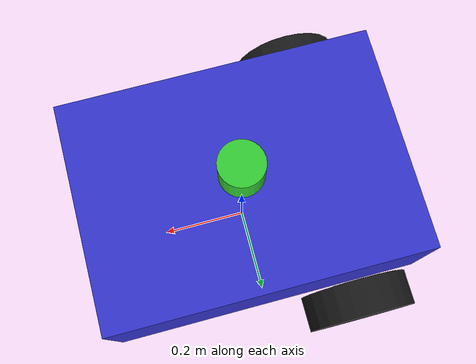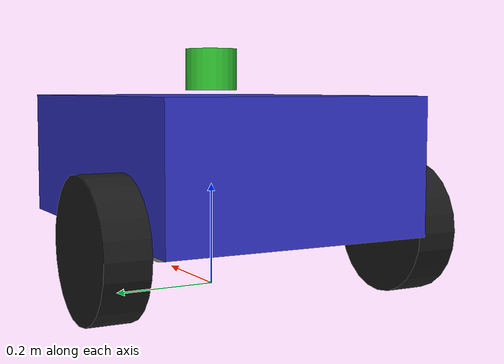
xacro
<?xml version="1.0"?>
<robot xmlns:xacro="http://www.ros.org/wiki/xacro" name="field_robot">

  <!-- Properties -->
  <xacro:property name="base_width" value="0.5"/>
  <xacro:property name="base_length" value="0.7"/>
  <xacro:property name="base_height" value="0.25"/>
  <xacro:property name="wheel_radius" value="0.125"/>
  <xacro:property name="wheel_width" value="0.08"/>
  <xacro:property name="wheel_xoff" value="-0.2"/>
  <!-- Rear wheels -->
  <xacro:property name="wheel_yoff" value="0.3"/>
  <xacro:property name="caster_radius" value="0.05"/>
  <xacro:property name="caster_xoff" value="0.25"/>
  <!-- Front caster -->

  <!-- Materials -->
  <material name="blue">
    <color rgba="0.2 0.2 0.8 1.0"/>
  </material>

  <material name="black">
    <color rgba="0.1 0.1 0.1 1.0"/>
  </material>

  <material name="green">
    <color rgba="0.2 0.8 0.2 1.0"/>
  </material>

  <material name="gray">
    <color rgba="0.5 0.5 0.5 1.0"/>
  </material>

  <!-- Base Footprint (for navigation) -->
  <link name="base_footprint"/>

  <joint name="base_joint" type="fixed">
    <parent link="base_footprint"/>
    <child link="base_link"/>
    <origin xyz="0 0 ${wheel_radius}" rpy="0 0 0"/>
  </joint>

  <!-- Base Link -->
  <link name="base_link">
    <visual>
      <origin xyz="0 0 0.125" rpy="0 0 0"/>
      <geometry>
        <box size="${base_length} ${base_width} ${base_height}"/>
      </geometry>
      <material name="blue"/>
    </visual>

    <collision>
      <origin xyz="0 0 0.125" rpy="0 0 0"/>
      <geometry>
        <box size="${base_length} ${base_width} ${base_height}"/>
      </geometry>
    </collision>

    <inertial>
      <origin xyz="0 0 0.125" rpy="0 0 0"/>
      <mass value="15.0"/>
      <inertia ixx="0.35" ixy="0.0" ixz="0.0" iyy="0.75" iyz="0.0" izz="0.95"/>
    </inertial>
  </link>

  <!-- Rear Drive Wheels Macro (2WD) -->
  <xacro:macro name="drive_wheel" params="prefix y_reflect">
    <link name="${prefix}_wheel">
      <visual>
        <origin xyz="0 0 0" rpy="${pi/2} 0 0"/>
        <geometry>
          <cylinder radius="${wheel_radius}" length="${wheel_width}"/>
        </geometry>
        <material name="black"/>
      </visual>

      <collision>
        <origin xyz="0 0 0" rpy="${pi/2} 0 0"/>
        <geometry>
          <cylinder radius="${wheel_radius}" length="${wheel_width}"/>
        </geometry>
      </collision>

      <inertial>
        <origin xyz="0 0 0" rpy="${pi/2} 0 0"/>
        <mass value="1.5"/>
        <inertia ixx="0.0125" ixy="0" ixz="0" iyy="0.0125" iyz="0" izz="0.0117"/>
      </inertial>
    </link>

    <joint name="${prefix}_wheel_joint" type="continuous">
      <parent link="base_link"/>
      <child link="${prefix}_wheel"/>
      <origin xyz="${wheel_xoff} ${y_reflect*wheel_yoff} 0" rpy="0 0 0"/>
      <axis xyz="0 1 0"/>
      <dynamics damping="5.0" friction="0.1"/>
    </joint>

    <!-- Gazebo material for wheel -->
    <gazebo reference="${prefix}_wheel">
      <material>Gazebo/Black</material>
      <mu1>1.5</mu1>
      <mu2>1.5</mu2>
      <kp>1000000.0</kp>
      <kd>100.0</kd>
      <minDepth>0.001</minDepth>
      <maxVel>1.0</maxVel>
    </gazebo>
  </xacro:macro>

  <!-- Instantiate rear drive wheels (LEFT and RIGHT only) -->
  <xacro:drive_wheel prefix="left" y_reflect="1"/>
  <xacro:drive_wheel prefix="right" y_reflect="-1"/>

  <!-- Front Caster Wheel -->
  <link name="caster_link">
    <visual>
      <origin xyz="0 0 0" rpy="0 0 0"/>
      <geometry>
        <sphere radius="${caster_radius}"/>
      </geometry>
      <material name="gray"/>
    </visual>

    <collision>
      <origin xyz="0 0 0" rpy="0 0 0"/>
      <geometry>
        <sphere radius="${caster_radius}"/>
      </geometry>
    </collision>

    <inertial>
      <origin xyz="0 0 0" rpy="0 0 0"/>
      <mass value="0.5"/>
      <inertia ixx="0.0005" ixy="0" ixz="0" iyy="0.0005" iyz="0" izz="0.0005"/>
    </inertial>
  </link>

  <joint name="caster_joint" type="fixed">
    <parent link="base_link"/>
    <child link="caster_link"/>
    <origin xyz="${caster_xoff} 0 ${-wheel_radius + caster_radius}" rpy="0 0 0"/>
  </joint>

  <!-- Gazebo properties for caster -->
  <gazebo reference="caster_link">
    <material>Gazebo/Grey</material>
    <mu1>0.01</mu1>    <!-- Low friction for easy sliding -->
    <mu2>0.01</mu2>
    <kp>1000000.0</kp>
    <kd>100.0</kd>
    <minDepth>0.001</minDepth>
  </gazebo>

  <!-- LiDAR Sensor -->
  <link name="lidar_link">
    <visual>
      <origin xyz="0 0 0" rpy="0 0 0"/>
      <geometry>
        <cylinder radius="0.05" length="0.08"/>
      </geometry>
      <material name="green"/>
    </visual>

    <collision>
      <origin xyz="0 0 0" rpy="0 0 0"/>
      <geometry>
        <cylinder radius="0.05" length="0.08"/>
      </geometry>
    </collision>

    <inertial>
      <origin xyz="0 0 0" rpy="0 0 0"/>
      <mass value="0.3"/>
      <inertia ixx="0.001" ixy="0" ixz="0" iyy="0.001" iyz="0" izz="0.001"/>
    </inertial>
  </link>

  <joint name="lidar_joint" type="fixed">
    <parent link="base_link"/>
    <child link="lidar_link"/>
    <origin xyz="0 0 0.3" rpy="0 0 0"/>
  </joint>

  <!-- Gazebo-specific properties -->
  <gazebo reference="base_link">
    <material>Gazebo/Blue</material>
    <mu1>0.3</mu1>
    <mu2>0.3</mu2>
  </gazebo>

  <gazebo reference="lidar_link">
    <material>Gazebo/Green</material>
  </gazebo>

  <!-- LiDAR Sensor Plugin -->
  <gazebo reference="lidar_link">
    <sensor name="lidar" type="ray">
      <pose>0 0 0 0 0 0</pose>
      <visualize>true</visualize>
      <update_rate>10</update_rate>
      <ray>
        <scan>
          <horizontal>
            <samples>360</samples>
            <resolution>1</resolution>
            <min_angle>-3.14159</min_angle>
            <max_angle>3.14159</max_angle>
          </horizontal>
        </scan>
        <range>
          <min>0.3</min>
          <max>12.0</max>
          <resolution>0.01</resolution>
        </range>
        <noise>
          <type>gaussian</type>
          <mean>0.0</mean>
          <stddev>0.01</stddev>
        </noise>
      </ray>
      <plugin name="scan" filename="libgazebo_ros_ray_sensor.so">
        <ros>
          <remapping>~/out:=scan</remapping>
        </ros>
        <output_type>sensor_msgs/LaserScan</output_type>
        <frame_name>lidar_link</frame_name>
      </plugin>
    </sensor>
  </gazebo>

  <!-- 2WD Differential Drive Plugin (Task 1: Control System) -->
  <gazebo>
    <plugin name="diff_drive" filename="libgazebo_ros_diff_drive.so">
      <update_rate>50</update_rate>

      <!-- Only rear wheels are driven (2WD) -->
      <left_joint>left_wheel_joint</left_joint>
      <right_joint>right_wheel_joint</right_joint>

      <!-- Kinematics -->
      <wheel_separation>0.6</wheel_separation>
      <wheel_diameter>0.25</wheel_diameter>

      <!-- Limits -->
      <max_wheel_torque>20</max_wheel_torque>
      <max_wheel_acceleration>1.0</max_wheel_acceleration>

      <!-- Output -->
      <publish_odom>true</publish_odom>
      <publish_odom_tf>true</publish_odom_tf>
      <publish_wheel_tf>true</publish_wheel_tf>

      <odometry_frame>odom</odometry_frame>
      <robot_base_frame>base_footprint</robot_base_frame>

      <!-- Topics -->
      <command_topic>cmd_vel</command_topic>
      <odometry_topic>odom</odometry_topic>
    </plugin>
  </gazebo>

</robot>
